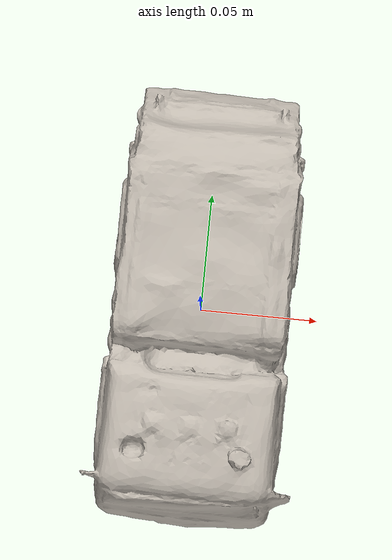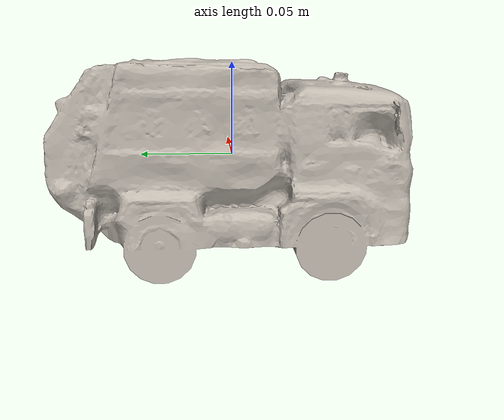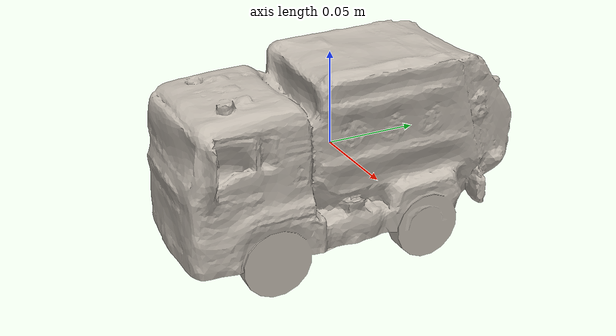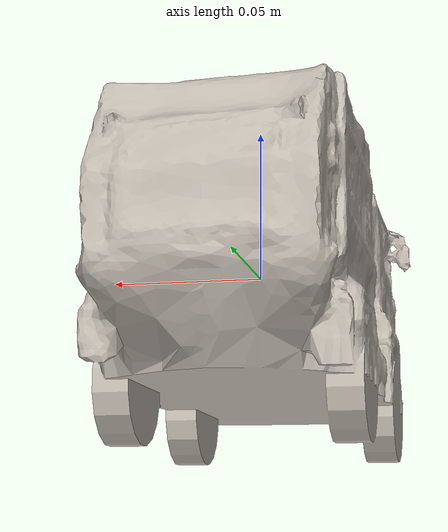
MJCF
<mujoco model="trash_truck">
  <compiler angle="radian" />

  <asset>
    <mesh name="trash_truck_visual_mesh" file="trash_truck/textured.obj" />
    <mesh name="trash_truck_collision_mesh_0" file="trash_truck/textured_coacd_0.stl" />
    <mesh name="trash_truck_collision_mesh_1" file="trash_truck/textured_coacd_1.stl" />
    <mesh name="trash_truck_collision_mesh_2" file="trash_truck/textured_coacd_2.stl" />
    <mesh name="trash_truck_collision_mesh_3" file="trash_truck/textured_coacd_3.stl" />
    <mesh name="trash_truck_collision_mesh_4" file="trash_truck/textured_coacd_4.stl" />
    <texture name="trash_truck_texture" type="2d" file="trash_truck/texture_map.png" />
    <material name="trash_truck_material" texture="trash_truck_texture" />

    <material name="wheel" rgba="1 1 1 1"/>
  </asset>

  <worldbody>
    <body name="trash_truck" pos="0 0 0" euler="0 0 0">
      <freejoint name="trash_truck_joint" />
      <geom name="trash_truck_visual_geom" type="mesh" mesh="trash_truck_visual_mesh" material="trash_truck_material" pos="0.0 -4.3e-07 -4.14e-06" euler="0 0 0" contype="0" conaffinity="0" group="0" />
      <geom name="trash_truck_collision_geom_0" type="mesh" mesh="trash_truck_collision_mesh_0" pos="0.0 -4.3e-07 -4.14e-06" euler="0 0 0" contype="1" conaffinity="1" group="3" />
      <geom name="trash_truck_collision_geom_1" type="mesh" mesh="trash_truck_collision_mesh_1" pos="0.0 -4.3e-07 -4.14e-06" euler="0 0 0" contype="1" conaffinity="1" group="3" />
      <geom name="trash_truck_collision_geom_2" type="mesh" mesh="trash_truck_collision_mesh_2" pos="0.0 -4.3e-07 -4.14e-06" euler="0 0 0" contype="1" conaffinity="1" group="3" />
      <geom name="trash_truck_collision_geom_3" type="mesh" mesh="trash_truck_collision_mesh_3" pos="0.0 -4.3e-07 -4.14e-06" euler="0 0 0" contype="1" conaffinity="1" group="3" />
      <geom name="trash_truck_collision_geom_4" type="mesh" mesh="trash_truck_collision_mesh_4" pos="0.0 -4.3e-07 -4.14e-06" euler="0 0 0" contype="1" conaffinity="1" group="3" />
      <inertial pos="0 0 0" euler="0 0 0" mass="0.5" diaginertia="0.001 0.001 0.001" />

      <body name="wheel_0" pos="0 0.04 -0.047" quat="0.7071068 0 0.7071068 0">
        <joint name="wheel_joint_0" type="hinge" axis="0 0 1" limited="false" damping="0.0005"/>
        <inertial pos="0 0 0" mass="0.1" diaginertia="0.001 0.001 0.001"/>
        <geom name="wheel_0_collision" type="capsule" size="0.015 0.02" contype="1" conaffinity="1" group="3"/>
      </body>

      <body name="wheel_1" pos="0 -0.04 -0.047" quat="0.7071068 0 0.7071068 0">
        <joint name="wheel_joint_1" type="hinge" axis="0 0 1" limited="false" damping="0.0005"/>
        <inertial pos="0 0 0" mass="0.1" diaginertia="0.001 0.001 0.001"/>
        <geom name="wheel_1_collision" type="capsule" size="0.015 0.02" contype="1" conaffinity="1" group="3"/>
      </body>
    </body>
  </worldbody>
</mujoco>
